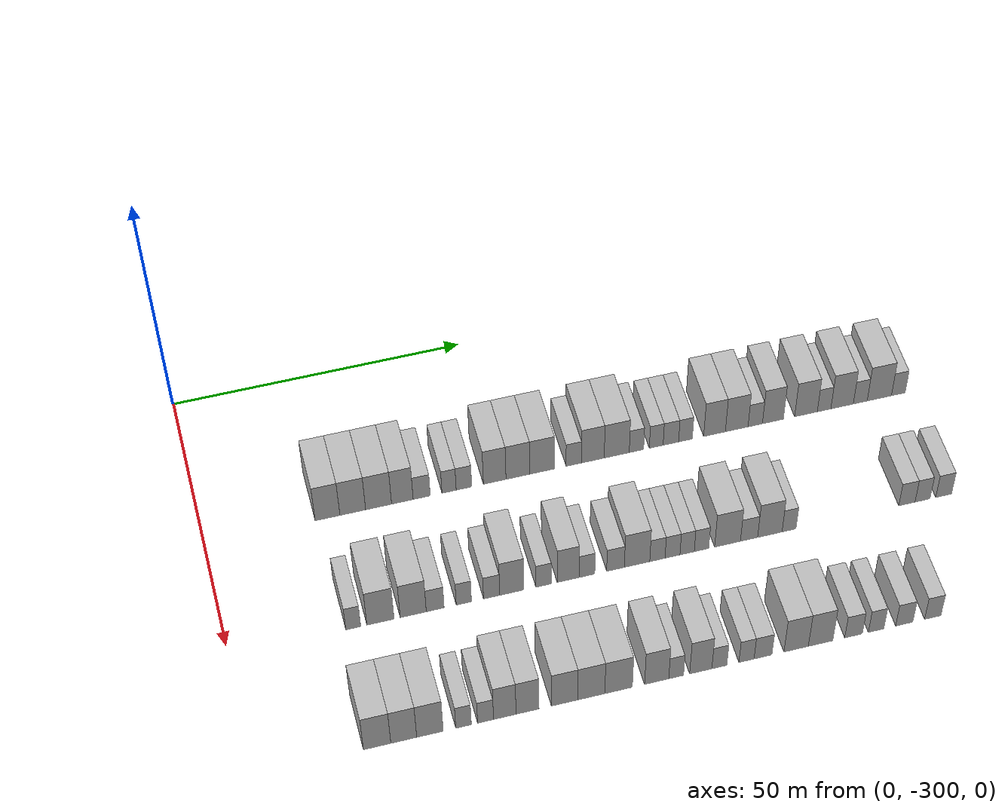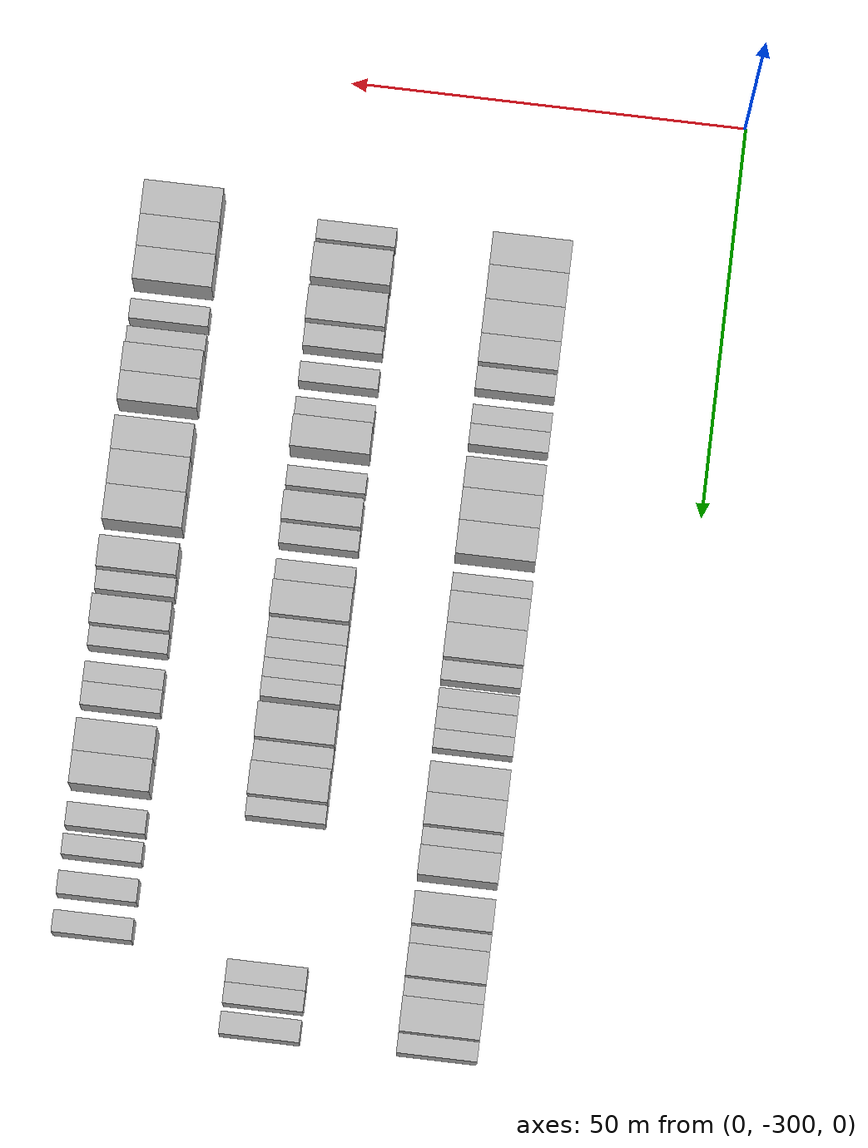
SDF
<sdf version="1.6">
 <world name="default">
  <model name="building_22">
   <static>1</static>
   <pose>25.0000 -279.4295 0 0.000000 0.000000 0.000000</pose>
   <link name="link">
    <pose>0 0 4.50 0 0 0</pose>
    <collision name="collision"><geometry><box><size>10.0000 4.1637 9.0000</size></box></geometry></collision>
    <visual name="visual">
     <cast_shadows>0</cast_shadows>
     <geometry><box><size>10.0000 4.1637 9.0000</size></box></geometry>
     <material>
      <script>
       <uri>model://HANNAS_wall/materials/scripts</uri>
       <uri>model://HANNAS_wall/materials/textures</uri>
       <name>vrc/HANNAS_wall</name>
      </script>
     </material>
    </visual>
   </link>
  </model>
  <model name="building_23">
   <static>1</static>
   <pose>25.0000 -275.1797 0 0.000000 0.000000 0.000000</pose>
   <link name="link">
    <pose>0 0 4.50 0 0 0</pose>
    <collision name="collision"><geometry><box><size>10.0000 4.3360 9.0000</size></box></geometry></collision>
    <visual name="visual">
     <cast_shadows>0</cast_shadows>
     <geometry><box><size>10.0000 4.3360 9.0000</size></box></geometry>
     <material>
      <script>
       <uri>model://HANNAS_wall/materials/scripts</uri>
       <uri>model://HANNAS_wall/materials/textures</uri>
       <name>vrc/HANNAS_wall</name>
      </script>
     </material>
    </visual>
   </link>
  </model>
  <model name="building_24">
   <static>1</static>
   <pose>25.0000 -270.8225 0 0.000000 0.000000 0.000000</pose>
   <link name="link">
    <pose>0 0 4.50 0 0 0</pose>
    <collision name="collision"><geometry><box><size>10.0000 4.3785 9.0000</size></box></geometry></collision>
    <visual name="visual">
     <cast_shadows>0</cast_shadows>
     <geometry><box><size>10.0000 4.3785 9.0000</size></box></geometry>
     <material>
      <script>
       <uri>model://HANNAS_wall/materials/scripts</uri>
       <uri>model://HANNAS_wall/materials/textures</uri>
       <name>vrc/HANNAS_wall</name>
      </script>
     </material>
    </visual>
   </link>
  </model>
  <model name="building_25">
   <static>1</static>
   <pose>25.0000 -266.8065 0 0.000000 0.000000 0.000000</pose>
   <link name="link">
    <pose>0 0 4.50 0 0 0</pose>
    <collision name="collision"><geometry><box><size>10.0000 3.6535 9.0000</size></box></geometry></collision>
    <visual name="visual">
     <cast_shadows>0</cast_shadows>
     <geometry><box><size>10.0000 3.6535 9.0000</size></box></geometry>
     <material>
      <script>
       <uri>model://HANNAS_wall/materials/scripts</uri>
       <uri>model://HANNAS_wall/materials/textures</uri>
       <name>vrc/HANNAS_wall</name>
      </script>
     </material>
    </visual>
   </link>
  </model>
  <model name="building_26">
   <static>1</static>
   <pose>25.0000 -263.5248 0 0.000000 0.000000 0.000000</pose>
   <link name="link">
    <pose>0 0 3.00 0 0 0</pose>
    <collision name="collision"><geometry><box><size>10.0000 2.9098 6.0000</size></box></geometry></collision>
    <visual name="visual">
     <cast_shadows>0</cast_shadows>
     <geometry><box><size>10.0000 2.9098 6.0000</size></box></geometry>
     <material>
      <script>
       <uri>model://HANNAS_wall/materials/scripts</uri>
       <uri>model://HANNAS_wall/materials/textures</uri>
       <name>vrc/HANNAS_wall</name>
      </script>
     </material>
    </visual>
   </link>
  </model>
  <model name="building_27">
   <static>1</static>
   <pose>25.0000 -258.8605 0 0.000000 0.000000 0.000000</pose>
   <link name="link">
    <pose>0 0 3.00 0 0 0</pose>
    <collision name="collision"><geometry><box><size>10.0000 2.4188 6.0000</size></box></geometry></collision>
    <visual name="visual">
     <cast_shadows>0</cast_shadows>
     <geometry><box><size>10.0000 2.4188 6.0000</size></box></geometry>
     <material>
      <script>
       <uri>model://HANNAS_wall/materials/scripts</uri>
       <uri>model://HANNAS_wall/materials/textures</uri>
       <name>vrc/HANNAS_wall</name>
      </script>
     </material>
    </visual>
   </link>
  </model>
  <model name="building_28">
   <static>1</static>
   <pose>25.0000 -256.3234 0 0.000000 0.000000 0.000000</pose>
   <link name="link">
    <pose>0 0 3.00 0 0 0</pose>
    <collision name="collision"><geometry><box><size>10.0000 2.6554 6.0000</size></box></geometry></collision>
    <visual name="visual">
     <cast_shadows>0</cast_shadows>
     <geometry><box><size>10.0000 2.6554 6.0000</size></box></geometry>
     <material>
      <script>
       <uri>model://HANNAS_wall/materials/scripts</uri>
       <uri>model://HANNAS_wall/materials/textures</uri>
       <name>vrc/HANNAS_wall</name>
      </script>
     </material>
    </visual>
   </link>
  </model>
  <model name="building_29">
   <static>1</static>
   <pose>25.0000 -251.0573 0 0.000000 0.000000 0.000000</pose>
   <link name="link">
    <pose>0 0 4.50 0 0 0</pose>
    <collision name="collision"><geometry><box><size>10.0000 3.8767 9.0000</size></box></geometry></collision>
    <visual name="visual">
     <cast_shadows>0</cast_shadows>
     <geometry><box><size>10.0000 3.8767 9.0000</size></box></geometry>
     <material>
      <script>
       <uri>model://HANNAS_wall/materials/scripts</uri>
       <uri>model://HANNAS_wall/materials/textures</uri>
       <name>vrc/HANNAS_wall</name>
      </script>
     </material>
    </visual>
   </link>
  </model>
  <model name="building_30">
   <static>1</static>
   <pose>25.0000 -247.0686 0 0.000000 0.000000 0.000000</pose>
   <link name="link">
    <pose>0 0 4.50 0 0 0</pose>
    <collision name="collision"><geometry><box><size>10.0000 4.1009 9.0000</size></box></geometry></collision>
    <visual name="visual">
     <cast_shadows>0</cast_shadows>
     <geometry><box><size>10.0000 4.1009 9.0000</size></box></geometry>
     <material>
      <script>
       <uri>model://HANNAS_wall/materials/scripts</uri>
       <uri>model://HANNAS_wall/materials/textures</uri>
       <name>vrc/HANNAS_wall</name>
      </script>
     </material>
    </visual>
   </link>
  </model>
  <model name="building_31">
   <static>1</static>
   <pose>25.0000 -242.8872 0 0.000000 0.000000 0.000000</pose>
   <link name="link">
    <pose>0 0 4.50 0 0 0</pose>
    <collision name="collision"><geometry><box><size>10.0000 4.2619 9.0000</size></box></geometry></collision>
    <visual name="visual">
     <cast_shadows>0</cast_shadows>
     <geometry><box><size>10.0000 4.2619 9.0000</size></box></geometry>
     <material>
      <script>
       <uri>model://HANNAS_wall/materials/scripts</uri>
       <uri>model://HANNAS_wall/materials/textures</uri>
       <name>vrc/HANNAS_wall</name>
      </script>
     </material>
    </visual>
   </link>
  </model>
  <model name="building_32">
   <static>1</static>
   <pose>25.0000 -237.4267 0 0.000000 0.000000 0.000000</pose>
   <link name="link">
    <pose>0 0 3.00 0 0 0</pose>
    <collision name="collision"><geometry><box><size>10.0000 2.6591 6.0000</size></box></geometry></collision>
    <visual name="visual">
     <cast_shadows>0</cast_shadows>
     <geometry><box><size>10.0000 2.6591 6.0000</size></box></geometry>
     <material>
      <script>
       <uri>model://HANNAS_wall/materials/scripts</uri>
       <uri>model://HANNAS_wall/materials/textures</uri>
       <name>vrc/HANNAS_wall</name>
      </script>
     </material>
    </visual>
   </link>
  </model>
  <model name="building_33">
   <static>1</static>
   <pose>25.0000 -234.1160 0 0.000000 0.000000 0.000000</pose>
   <link name="link">
    <pose>0 0 4.50 0 0 0</pose>
    <collision name="collision"><geometry><box><size>10.0000 3.9623 9.0000</size></box></geometry></collision>
    <visual name="visual">
     <cast_shadows>0</cast_shadows>
     <geometry><box><size>10.0000 3.9623 9.0000</size></box></geometry>
     <material>
      <script>
       <uri>model://HANNAS_wall/materials/scripts</uri>
       <uri>model://HANNAS_wall/materials/textures</uri>
       <name>vrc/HANNAS_wall</name>
      </script>
     </material>
    </visual>
   </link>
  </model>
  <model name="building_34">
   <static>1</static>
   <pose>25.0000 -229.9554 0 0.000000 0.000000 0.000000</pose>
   <link name="link">
    <pose>0 0 4.50 0 0 0</pose>
    <collision name="collision"><geometry><box><size>10.0000 4.3589 9.0000</size></box></geometry></collision>
    <visual name="visual">
     <cast_shadows>0</cast_shadows>
     <geometry><box><size>10.0000 4.3589 9.0000</size></box></geometry>
     <material>
      <script>
       <uri>model://HANNAS_wall/materials/scripts</uri>
       <uri>model://HANNAS_wall/materials/textures</uri>
       <name>vrc/HANNAS_wall</name>
      </script>
     </material>
    </visual>
   </link>
  </model>
  <model name="building_35">
   <static>1</static>
   <pose>25.0000 -226.5185 0 0.000000 0.000000 0.000000</pose>
   <link name="link">
    <pose>0 0 3.00 0 0 0</pose>
    <collision name="collision"><geometry><box><size>10.0000 2.5149 6.0000</size></box></geometry></collision>
    <visual name="visual">
     <cast_shadows>0</cast_shadows>
     <geometry><box><size>10.0000 2.5149 6.0000</size></box></geometry>
     <material>
      <script>
       <uri>model://HANNAS_wall/materials/scripts</uri>
       <uri>model://HANNAS_wall/materials/textures</uri>
       <name>vrc/HANNAS_wall</name>
      </script>
     </material>
    </visual>
   </link>
  </model>
  <model name="building_36">
   <static>1</static>
   <pose>25.0000 -223.0528 0 0.000000 0.000000 0.000000</pose>
   <link name="link">
    <pose>0 0 3.00 0 0 0</pose>
    <collision name="collision"><geometry><box><size>10.0000 2.4166 6.0000</size></box></geometry></collision>
    <visual name="visual">
     <cast_shadows>0</cast_shadows>
     <geometry><box><size>10.0000 2.4166 6.0000</size></box></geometry>
     <material>
      <script>
       <uri>model://HANNAS_wall/materials/scripts</uri>
       <uri>model://HANNAS_wall/materials/textures</uri>
       <name>vrc/HANNAS_wall</name>
      </script>
     </material>
    </visual>
   </link>
  </model>
  <model name="building_37">
   <static>1</static>
   <pose>25.0000 -220.4855 0 0.000000 0.000000 0.000000</pose>
   <link name="link">
    <pose>0 0 3.00 0 0 0</pose>
    <collision name="collision"><geometry><box><size>10.0000 2.7179 6.0000</size></box></geometry></collision>
    <visual name="visual">
     <cast_shadows>0</cast_shadows>
     <geometry><box><size>10.0000 2.7179 6.0000</size></box></geometry>
     <material>
      <script>
       <uri>model://HANNAS_wall/materials/scripts</uri>
       <uri>model://HANNAS_wall/materials/textures</uri>
       <name>vrc/HANNAS_wall</name>
      </script>
     </material>
    </visual>
   </link>
  </model>
  <model name="building_38">
   <static>1</static>
   <pose>25.0000 -217.9222 0 0.000000 0.000000 0.000000</pose>
   <link name="link">
    <pose>0 0 3.00 0 0 0</pose>
    <collision name="collision"><geometry><box><size>10.0000 2.4088 6.0000</size></box></geometry></collision>
    <visual name="visual">
     <cast_shadows>0</cast_shadows>
     <geometry><box><size>10.0000 2.4088 6.0000</size></box></geometry>
     <material>
      <script>
       <uri>model://HANNAS_wall/materials/scripts</uri>
       <uri>model://HANNAS_wall/materials/textures</uri>
       <name>vrc/HANNAS_wall</name>
      </script>
     </material>
    </visual>
   </link>
  </model>
  <model name="building_39">
   <static>1</static>
   <pose>25.0000 -212.7995 0 0.000000 0.000000 0.000000</pose>
   <link name="link">
    <pose>0 0 4.50 0 0 0</pose>
    <collision name="collision"><geometry><box><size>10.0000 3.8366 9.0000</size></box></geometry></collision>
    <visual name="visual">
     <cast_shadows>0</cast_shadows>
     <geometry><box><size>10.0000 3.8366 9.0000</size></box></geometry>
     <material>
      <script>
       <uri>model://HANNAS_wall/materials/scripts</uri>
       <uri>model://HANNAS_wall/materials/textures</uri>
       <name>vrc/HANNAS_wall</name>
      </script>
     </material>
    </visual>
   </link>
  </model>
  <model name="building_40">
   <static>1</static>
   <pose>25.0000 -208.8753 0 0.000000 0.000000 0.000000</pose>
   <link name="link">
    <pose>0 0 4.50 0 0 0</pose>
    <collision name="collision"><geometry><box><size>10.0000 4.0117 9.0000</size></box></geometry></collision>
    <visual name="visual">
     <cast_shadows>0</cast_shadows>
     <geometry><box><size>10.0000 4.0117 9.0000</size></box></geometry>
     <material>
      <script>
       <uri>model://HANNAS_wall/materials/scripts</uri>
       <uri>model://HANNAS_wall/materials/textures</uri>
       <name>vrc/HANNAS_wall</name>
      </script>
     </material>
    </visual>
   </link>
  </model>
  <model name="building_41">
   <static>1</static>
   <pose>25.0000 -205.5913 0 0.000000 0.000000 0.000000</pose>
   <link name="link">
    <pose>0 0 3.00 0 0 0</pose>
    <collision name="collision"><geometry><box><size>10.0000 2.5564 6.0000</size></box></geometry></collision>
    <visual name="visual">
     <cast_shadows>0</cast_shadows>
     <geometry><box><size>10.0000 2.5564 6.0000</size></box></geometry>
     <material>
      <script>
       <uri>model://HANNAS_wall/materials/scripts</uri>
       <uri>model://HANNAS_wall/materials/textures</uri>
       <name>vrc/HANNAS_wall</name>
      </script>
     </material>
    </visual>
   </link>
  </model>
  <model name="building_42">
   <static>1</static>
   <pose>25.0000 -202.4487 0 0.000000 0.000000 0.000000</pose>
   <link name="link">
    <pose>0 0 4.50 0 0 0</pose>
    <collision name="collision"><geometry><box><size>10.0000 3.7288 9.0000</size></box></geometry></collision>
    <visual name="visual">
     <cast_shadows>0</cast_shadows>
     <geometry><box><size>10.0000 3.7288 9.0000</size></box></geometry>
     <material>
      <script>
       <uri>model://HANNAS_wall/materials/scripts</uri>
       <uri>model://HANNAS_wall/materials/textures</uri>
       <name>vrc/HANNAS_wall</name>
      </script>
     </material>
    </visual>
   </link>
  </model>
  <model name="building_43">
   <static>1</static>
   <pose>25.0000 -196.5522 0 0.000000 0.000000 0.000000</pose>
   <link name="link">
    <pose>0 0 4.50 0 0 0</pose>
    <collision name="collision"><geometry><box><size>10.0000 4.0642 9.0000</size></box></geometry></collision>
    <visual name="visual">
     <cast_shadows>0</cast_shadows>
     <geometry><box><size>10.0000 4.0642 9.0000</size></box></geometry>
     <material>
      <script>
       <uri>model://HANNAS_wall/materials/scripts</uri>
       <uri>model://HANNAS_wall/materials/textures</uri>
       <name>vrc/HANNAS_wall</name>
      </script>
     </material>
    </visual>
   </link>
  </model>
  <model name="building_44">
   <static>1</static>
   <pose>25.0000 -193.3092 0 0.000000 0.000000 0.000000</pose>
   <link name="link">
    <pose>0 0 3.00 0 0 0</pose>
    <collision name="collision"><geometry><box><size>10.0000 2.4218 6.0000</size></box></geometry></collision>
    <visual name="visual">
     <cast_shadows>0</cast_shadows>
     <geometry><box><size>10.0000 2.4218 6.0000</size></box></geometry>
     <material>
      <script>
       <uri>model://HANNAS_wall/materials/scripts</uri>
       <uri>model://HANNAS_wall/materials/textures</uri>
       <name>vrc/HANNAS_wall</name>
      </script>
     </material>
    </visual>
   </link>
  </model>
  <model name="building_45">
   <static>1</static>
   <pose>25.0000 -190.0802 0 0.000000 0.000000 0.000000</pose>
   <link name="link">
    <pose>0 0 4.50 0 0 0</pose>
    <collision name="collision"><geometry><box><size>10.0000 4.0363 9.0000</size></box></geometry></collision>
    <visual name="visual">
     <cast_shadows>0</cast_shadows>
     <geometry><box><size>10.0000 4.0363 9.0000</size></box></geometry>
     <material>
      <script>
       <uri>model://HANNAS_wall/materials/scripts</uri>
       <uri>model://HANNAS_wall/materials/textures</uri>
       <name>vrc/HANNAS_wall</name>
      </script>
     </material>
    </visual>
   </link>
  </model>
  <model name="building_46">
   <static>1</static>
   <pose>25.0000 -186.8166 0 0.000000 0.000000 0.000000</pose>
   <link name="link">
    <pose>0 0 3.00 0 0 0</pose>
    <collision name="collision"><geometry><box><size>10.0000 2.4908 6.0000</size></box></geometry></collision>
    <visual name="visual">
     <cast_shadows>0</cast_shadows>
     <geometry><box><size>10.0000 2.4908 6.0000</size></box></geometry>
     <material>
      <script>
       <uri>model://HANNAS_wall/materials/scripts</uri>
       <uri>model://HANNAS_wall/materials/textures</uri>
       <name>vrc/HANNAS_wall</name>
      </script>
     </material>
    </visual>
   </link>
  </model>
  <model name="building_47">
   <static>1</static>
   <pose>25.0000 -183.3786 0 0.000000 0.000000 0.000000</pose>
   <link name="link">
    <pose>0 0 4.50 0 0 0</pose>
    <collision name="collision"><geometry><box><size>10.0000 4.3853 9.0000</size></box></geometry></collision>
    <visual name="visual">
     <cast_shadows>0</cast_shadows>
     <geometry><box><size>10.0000 4.3853 9.0000</size></box></geometry>
     <material>
      <script>
       <uri>model://HANNAS_wall/materials/scripts</uri>
       <uri>model://HANNAS_wall/materials/textures</uri>
       <name>vrc/HANNAS_wall</name>
      </script>
     </material>
    </visual>
   </link>
  </model>
  <model name="building_48">
   <static>1</static>
   <pose>25.0000 -179.9439 0 0.000000 0.000000 0.000000</pose>
   <link name="link">
    <pose>0 0 3.00 0 0 0</pose>
    <collision name="collision"><geometry><box><size>10.0000 2.4842 6.0000</size></box></geometry></collision>
    <visual name="visual">
     <cast_shadows>0</cast_shadows>
     <geometry><box><size>10.0000 2.4842 6.0000</size></box></geometry>
     <material>
      <script>
       <uri>model://HANNAS_wall/materials/scripts</uri>
       <uri>model://HANNAS_wall/materials/textures</uri>
       <name>vrc/HANNAS_wall</name>
      </script>
     </material>
    </visual>
   </link>
  </model>
  <model name="building_205">
   <static>1</static>
   <pose>47.0000 -279.8410 0 0.000000 0.000000 0.000000</pose>
   <link name="link">
    <pose>0 0 3.00 0 0 0</pose>
    <collision name="collision"><geometry><box><size>10.0000 2.4319 6.0000</size></box></geometry></collision>
    <visual name="visual">
     <cast_shadows>0</cast_shadows>
     <geometry><box><size>10.0000 2.4319 6.0000</size></box></geometry>
     <material>
      <script>
       <uri>model://HANNAS_wall/materials/scripts</uri>
       <uri>model://HANNAS_wall/materials/textures</uri>
       <name>vrc/HANNAS_wall</name>
      </script>
     </material>
    </visual>
   </link>
  </model>
  <model name="building_206">
   <static>1</static>
   <pose>47.0000 -275.4010 0 0.000000 0.000000 0.000000</pose>
   <link name="link">
    <pose>0 0 4.50 0 0 0</pose>
    <collision name="collision"><geometry><box><size>10.0000 4.4481 9.0000</size></box></geometry></collision>
    <visual name="visual">
     <cast_shadows>0</cast_shadows>
     <geometry><box><size>10.0000 4.4481 9.0000</size></box></geometry>
     <material>
      <script>
       <uri>model://HANNAS_wall/materials/scripts</uri>
       <uri>model://HANNAS_wall/materials/textures</uri>
       <name>vrc/HANNAS_wall</name>
      </script>
     </material>
    </visual>
   </link>
  </model>
  <model name="building_207">
   <static>1</static>
   <pose>47.0000 -270.0355 0 0.000000 0.000000 0.000000</pose>
   <link name="link">
    <pose>0 0 4.50 0 0 0</pose>
    <collision name="collision"><geometry><box><size>10.0000 4.2831 9.0000</size></box></geometry></collision>
    <visual name="visual">
     <cast_shadows>0</cast_shadows>
     <geometry><box><size>10.0000 4.2831 9.0000</size></box></geometry>
     <material>
      <script>
       <uri>model://HANNAS_wall/materials/scripts</uri>
       <uri>model://HANNAS_wall/materials/textures</uri>
       <name>vrc/HANNAS_wall</name>
      </script>
     </material>
    </visual>
   </link>
  </model>
  <model name="building_208">
   <static>1</static>
   <pose>47.0000 -266.4271 0 0.000000 0.000000 0.000000</pose>
   <link name="link">
    <pose>0 0 3.00 0 0 0</pose>
    <collision name="collision"><geometry><box><size>10.0000 2.9337 6.0000</size></box></geometry></collision>
    <visual name="visual">
     <cast_shadows>0</cast_shadows>
     <geometry><box><size>10.0000 2.9337 6.0000</size></box></geometry>
     <material>
      <script>
       <uri>model://HANNAS_wall/materials/scripts</uri>
       <uri>model://HANNAS_wall/materials/textures</uri>
       <name>vrc/HANNAS_wall</name>
      </script>
     </material>
    </visual>
   </link>
  </model>
  <model name="building_209">
   <static>1</static>
   <pose>47.0000 -261.7049 0 0.000000 0.000000 0.000000</pose>
   <link name="link">
    <pose>0 0 3.00 0 0 0</pose>
    <collision name="collision"><geometry><box><size>10.0000 2.5108 6.0000</size></box></geometry></collision>
    <visual name="visual">
     <cast_shadows>0</cast_shadows>
     <geometry><box><size>10.0000 2.5108 6.0000</size></box></geometry>
     <material>
      <script>
       <uri>model://HANNAS_wall/materials/scripts</uri>
       <uri>model://HANNAS_wall/materials/textures</uri>
       <name>vrc/HANNAS_wall</name>
      </script>
     </material>
    </visual>
   </link>
  </model>
  <model name="building_210">
   <static>1</static>
   <pose>47.0000 -257.1016 0 0.000000 0.000000 0.000000</pose>
   <link name="link">
    <pose>0 0 3.00 0 0 0</pose>
    <collision name="collision"><geometry><box><size>10.0000 2.6959 6.0000</size></box></geometry></collision>
    <visual name="visual">
     <cast_shadows>0</cast_shadows>
     <geometry><box><size>10.0000 2.6959 6.0000</size></box></geometry>
     <material>
      <script>
       <uri>model://HANNAS_wall/materials/scripts</uri>
       <uri>model://HANNAS_wall/materials/textures</uri>
       <name>vrc/HANNAS_wall</name>
      </script>
     </material>
    </visual>
   </link>
  </model>
  <model name="building_211">
   <static>1</static>
   <pose>47.0000 -253.7463 0 0.000000 0.000000 0.000000</pose>
   <link name="link">
    <pose>0 0 4.50 0 0 0</pose>
    <collision name="collision"><geometry><box><size>10.0000 4.0147 9.0000</size></box></geometry></collision>
    <visual name="visual">
     <cast_shadows>0</cast_shadows>
     <geometry><box><size>10.0000 4.0147 9.0000</size></box></geometry>
     <material>
      <script>
       <uri>model://HANNAS_wall/materials/scripts</uri>
       <uri>model://HANNAS_wall/materials/textures</uri>
       <name>vrc/HANNAS_wall</name>
      </script>
     </material>
    </visual>
   </link>
  </model>
  <model name="building_212">
   <static>1</static>
   <pose>47.0000 -248.4638 0 0.000000 0.000000 0.000000</pose>
   <link name="link">
    <pose>0 0 3.00 0 0 0</pose>
    <collision name="collision"><geometry><box><size>10.0000 2.5503 6.0000</size></box></geometry></collision>
    <visual name="visual">
     <cast_shadows>0</cast_shadows>
     <geometry><box><size>10.0000 2.5503 6.0000</size></box></geometry>
     <material>
      <script>
       <uri>model://HANNAS_wall/materials/scripts</uri>
       <uri>model://HANNAS_wall/materials/textures</uri>
       <name>vrc/HANNAS_wall</name>
      </script>
     </material>
    </visual>
   </link>
  </model>
  <model name="building_213">
   <static>1</static>
   <pose>47.0000 -244.3575 0 0.000000 0.000000 0.000000</pose>
   <link name="link">
    <pose>0 0 4.50 0 0 0</pose>
    <collision name="collision"><geometry><box><size>10.0000 3.6623 9.0000</size></box></geometry></collision>
    <visual name="visual">
     <cast_shadows>0</cast_shadows>
     <geometry><box><size>10.0000 3.6623 9.0000</size></box></geometry>
     <material>
      <script>
       <uri>model://HANNAS_wall/materials/scripts</uri>
       <uri>model://HANNAS_wall/materials/textures</uri>
       <name>vrc/HANNAS_wall</name>
      </script>
     </material>
    </visual>
   </link>
  </model>
  <model name="building_214">
   <static>1</static>
   <pose>47.0000 -241.2093 0 0.000000 0.000000 0.000000</pose>
   <link name="link">
    <pose>0 0 3.00 0 0 0</pose>
    <collision name="collision"><geometry><box><size>10.0000 2.6341 6.0000</size></box></geometry></collision>
    <visual name="visual">
     <cast_shadows>0</cast_shadows>
     <geometry><box><size>10.0000 2.6341 6.0000</size></box></geometry>
     <material>
      <script>
       <uri>model://HANNAS_wall/materials/scripts</uri>
       <uri>model://HANNAS_wall/materials/textures</uri>
       <name>vrc/HANNAS_wall</name>
      </script>
     </material>
    </visual>
   </link>
  </model>
  <model name="building_215">
   <static>1</static>
   <pose>47.0000 -236.4048 0 0.000000 0.000000 0.000000</pose>
   <link name="link">
    <pose>0 0 3.00 0 0 0</pose>
    <collision name="collision"><geometry><box><size>10.0000 2.9750 6.0000</size></box></geometry></collision>
    <visual name="visual">
     <cast_shadows>0</cast_shadows>
     <geometry><box><size>10.0000 2.9750 6.0000</size></box></geometry>
     <material>
      <script>
       <uri>model://HANNAS_wall/materials/scripts</uri>
       <uri>model://HANNAS_wall/materials/textures</uri>
       <name>vrc/HANNAS_wall</name>
      </script>
     </material>
    </visual>
   </link>
  </model>
  <model name="building_216">
   <static>1</static>
   <pose>47.0000 -232.7644 0 0.000000 0.000000 0.000000</pose>
   <link name="link">
    <pose>0 0 4.50 0 0 0</pose>
    <collision name="collision"><geometry><box><size>10.0000 4.3058 9.0000</size></box></geometry></collision>
    <visual name="visual">
     <cast_shadows>0</cast_shadows>
     <geometry><box><size>10.0000 4.3058 9.0000</size></box></geometry>
     <material>
      <script>
       <uri>model://HANNAS_wall/materials/scripts</uri>
       <uri>model://HANNAS_wall/materials/textures</uri>
       <name>vrc/HANNAS_wall</name>
      </script>
     </material>
    </visual>
   </link>
  </model>
  <model name="building_217">
   <static>1</static>
   <pose>47.0000 -229.3202 0 0.000000 0.000000 0.000000</pose>
   <link name="link">
    <pose>0 0 3.00 0 0 0</pose>
    <collision name="collision"><geometry><box><size>10.0000 2.5826 6.0000</size></box></geometry></collision>
    <visual name="visual">
     <cast_shadows>0</cast_shadows>
     <geometry><box><size>10.0000 2.5826 6.0000</size></box></geometry>
     <material>
      <script>
       <uri>model://HANNAS_wall/materials/scripts</uri>
       <uri>model://HANNAS_wall/materials/textures</uri>
       <name>vrc/HANNAS_wall</name>
      </script>
     </material>
    </visual>
   </link>
  </model>
  <model name="building_218">
   <static>1</static>
   <pose>47.0000 -226.7614 0 0.000000 0.000000 0.000000</pose>
   <link name="link">
    <pose>0 0 3.00 0 0 0</pose>
    <collision name="collision"><geometry><box><size>10.0000 2.5348 6.0000</size></box></geometry></collision>
    <visual name="visual">
     <cast_shadows>0</cast_shadows>
     <geometry><box><size>10.0000 2.5348 6.0000</size></box></geometry>
     <material>
      <script>
       <uri>model://HANNAS_wall/materials/scripts</uri>
       <uri>model://HANNAS_wall/materials/textures</uri>
       <name>vrc/HANNAS_wall</name>
      </script>
     </material>
    </visual>
   </link>
  </model>
  <model name="building_219">
   <static>1</static>
   <pose>47.0000 -224.2777 0 0.000000 0.000000 0.000000</pose>
   <link name="link">
    <pose>0 0 3.00 0 0 0</pose>
    <collision name="collision"><geometry><box><size>10.0000 2.4327 6.0000</size></box></geometry></collision>
    <visual name="visual">
     <cast_shadows>0</cast_shadows>
     <geometry><box><size>10.0000 2.4327 6.0000</size></box></geometry>
     <material>
      <script>
       <uri>model://HANNAS_wall/materials/scripts</uri>
       <uri>model://HANNAS_wall/materials/textures</uri>
       <name>vrc/HANNAS_wall</name>
      </script>
     </material>
    </visual>
   </link>
  </model>
  <model name="building_220">
   <static>1</static>
   <pose>47.0000 -221.8286 0 0.000000 0.000000 0.000000</pose>
   <link name="link">
    <pose>0 0 3.00 0 0 0</pose>
    <collision name="collision"><geometry><box><size>10.0000 2.4654 6.0000</size></box></geometry></collision>
    <visual name="visual">
     <cast_shadows>0</cast_shadows>
     <geometry><box><size>10.0000 2.4654 6.0000</size></box></geometry>
     <material>
      <script>
       <uri>model://HANNAS_wall/materials/scripts</uri>
       <uri>model://HANNAS_wall/materials/textures</uri>
       <name>vrc/HANNAS_wall</name>
      </script>
     </material>
    </visual>
   </link>
  </model>
  <model name="building_221">
   <static>1</static>
   <pose>47.0000 -217.3854 0 0.000000 0.000000 0.000000</pose>
   <link name="link">
    <pose>0 0 4.50 0 0 0</pose>
    <collision name="collision"><geometry><box><size>10.0000 4.4210 9.0000</size></box></geometry></collision>
    <visual name="visual">
     <cast_shadows>0</cast_shadows>
     <geometry><box><size>10.0000 4.4210 9.0000</size></box></geometry>
     <material>
      <script>
       <uri>model://HANNAS_wall/materials/scripts</uri>
       <uri>model://HANNAS_wall/materials/textures</uri>
       <name>vrc/HANNAS_wall</name>
      </script>
     </material>
    </visual>
   </link>
  </model>
  <model name="building_222">
   <static>1</static>
   <pose>47.0000 -213.7025 0 0.000000 0.000000 0.000000</pose>
   <link name="link">
    <pose>0 0 3.00 0 0 0</pose>
    <collision name="collision"><geometry><box><size>10.0000 2.9449 6.0000</size></box></geometry></collision>
    <visual name="visual">
     <cast_shadows>0</cast_shadows>
     <geometry><box><size>10.0000 2.9449 6.0000</size></box></geometry>
     <material>
      <script>
       <uri>model://HANNAS_wall/materials/scripts</uri>
       <uri>model://HANNAS_wall/materials/textures</uri>
       <name>vrc/HANNAS_wall</name>
      </script>
     </material>
    </visual>
   </link>
  </model>
  <model name="building_223">
   <static>1</static>
   <pose>47.0000 -210.1298 0 0.000000 0.000000 0.000000</pose>
   <link name="link">
    <pose>0 0 4.50 0 0 0</pose>
    <collision name="collision"><geometry><box><size>10.0000 4.2006 9.0000</size></box></geometry></collision>
    <visual name="visual">
     <cast_shadows>0</cast_shadows>
     <geometry><box><size>10.0000 4.2006 9.0000</size></box></geometry>
     <material>
      <script>
       <uri>model://HANNAS_wall/materials/scripts</uri>
       <uri>model://HANNAS_wall/materials/textures</uri>
       <name>vrc/HANNAS_wall</name>
      </script>
     </material>
    </visual>
   </link>
  </model>
  <model name="building_224">
   <static>1</static>
   <pose>47.0000 -206.8283 0 0.000000 0.000000 0.000000</pose>
   <link name="link">
    <pose>0 0 3.00 0 0 0</pose>
    <collision name="collision"><geometry><box><size>10.0000 2.4024 6.0000</size></box></geometry></collision>
    <visual name="visual">
     <cast_shadows>0</cast_shadows>
     <geometry><box><size>10.0000 2.4024 6.0000</size></box></geometry>
     <material>
      <script>
       <uri>model://HANNAS_wall/materials/scripts</uri>
       <uri>model://HANNAS_wall/materials/textures</uri>
       <name>vrc/HANNAS_wall</name>
      </script>
     </material>
    </visual>
   </link>
  </model>
  <model name="building_225">
   <static>1</static>
   <pose>47.0000 -186.3368 0 0.000000 0.000000 0.000000</pose>
   <link name="link">
    <pose>0 0 3.00 0 0 0</pose>
    <collision name="collision"><geometry><box><size>10.0000 2.8602 6.0000</size></box></geometry></collision>
    <visual name="visual">
     <cast_shadows>0</cast_shadows>
     <geometry><box><size>10.0000 2.8602 6.0000</size></box></geometry>
     <material>
      <script>
       <uri>model://HANNAS_wall/materials/scripts</uri>
       <uri>model://HANNAS_wall/materials/textures</uri>
       <name>vrc/HANNAS_wall</name>
      </script>
     </material>
    </visual>
   </link>
  </model>
  <model name="building_226">
   <static>1</static>
   <pose>47.0000 -183.5931 0 0.000000 0.000000 0.000000</pose>
   <link name="link">
    <pose>0 0 3.00 0 0 0</pose>
    <collision name="collision"><geometry><box><size>10.0000 2.6272 6.0000</size></box></geometry></collision>
    <visual name="visual">
     <cast_shadows>0</cast_shadows>
     <geometry><box><size>10.0000 2.6272 6.0000</size></box></geometry>
     <material>
      <script>
       <uri>model://HANNAS_wall/materials/scripts</uri>
       <uri>model://HANNAS_wall/materials/textures</uri>
       <name>vrc/HANNAS_wall</name>
      </script>
     </material>
    </visual>
   </link>
  </model>
  <model name="building_227">
   <static>1</static>
   <pose>47.0000 -179.8867 0 0.000000 0.000000 0.000000</pose>
   <link name="link">
    <pose>0 0 3.00 0 0 0</pose>
    <collision name="collision"><geometry><box><size>10.0000 2.7856 6.0000</size></box></geometry></collision>
    <visual name="visual">
     <cast_shadows>0</cast_shadows>
     <geometry><box><size>10.0000 2.7856 6.0000</size></box></geometry>
     <material>
      <script>
       <uri>model://HANNAS_wall/materials/scripts</uri>
       <uri>model://HANNAS_wall/materials/textures</uri>
       <name>vrc/HANNAS_wall</name>
      </script>
     </material>
    </visual>
   </link>
  </model>
  <model name="building_399">
   <static>1</static>
   <pose>69.0000 -280.8203 0 0.000000 0.000000 0.000000</pose>
   <link name="link">
    <pose>0 0 4.50 0 0 0</pose>
    <collision name="collision"><geometry><box><size>10.0000 4.3335 9.0000</size></box></geometry></collision>
    <visual name="visual">
     <cast_shadows>0</cast_shadows>
     <geometry><box><size>10.0000 4.3335 9.0000</size></box></geometry>
     <material>
      <script>
       <uri>model://HANNAS_wall/materials/scripts</uri>
       <uri>model://HANNAS_wall/materials/textures</uri>
       <name>vrc/HANNAS_wall</name>
      </script>
     </material>
    </visual>
   </link>
  </model>
  <model name="building_400">
   <static>1</static>
   <pose>69.0000 -276.6087 0 0.000000 0.000000 0.000000</pose>
   <link name="link">
    <pose>0 0 4.50 0 0 0</pose>
    <collision name="collision"><geometry><box><size>10.0000 4.0898 9.0000</size></box></geometry></collision>
    <visual name="visual">
     <cast_shadows>0</cast_shadows>
     <geometry><box><size>10.0000 4.0898 9.0000</size></box></geometry>
     <material>
      <script>
       <uri>model://HANNAS_wall/materials/scripts</uri>
       <uri>model://HANNAS_wall/materials/textures</uri>
       <name>vrc/HANNAS_wall</name>
      </script>
     </material>
    </visual>
   </link>
  </model>
  <model name="building_401">
   <static>1</static>
   <pose>69.0000 -272.4610 0 0.000000 0.000000 0.000000</pose>
   <link name="link">
    <pose>0 0 4.50 0 0 0</pose>
    <collision name="collision"><geometry><box><size>10.0000 4.2055 9.0000</size></box></geometry></collision>
    <visual name="visual">
     <cast_shadows>0</cast_shadows>
     <geometry><box><size>10.0000 4.2055 9.0000</size></box></geometry>
     <material>
      <script>
       <uri>model://HANNAS_wall/materials/scripts</uri>
       <uri>model://HANNAS_wall/materials/textures</uri>
       <name>vrc/HANNAS_wall</name>
      </script>
     </material>
    </visual>
   </link>
  </model>
  <model name="building_402">
   <static>1</static>
   <pose>69.0000 -267.1152 0 0.000000 0.000000 0.000000</pose>
   <link name="link">
    <pose>0 0 3.00 0 0 0</pose>
    <collision name="collision"><geometry><box><size>10.0000 2.4860 6.0000</size></box></geometry></collision>
    <visual name="visual">
     <cast_shadows>0</cast_shadows>
     <geometry><box><size>10.0000 2.4860 6.0000</size></box></geometry>
     <material>
      <script>
       <uri>model://HANNAS_wall/materials/scripts</uri>
       <uri>model://HANNAS_wall/materials/textures</uri>
       <name>vrc/HANNAS_wall</name>
      </script>
     </material>
    </visual>
   </link>
  </model>
  <model name="building_403">
   <static>1</static>
   <pose>69.0000 -263.5957 0 0.000000 0.000000 0.000000</pose>
   <link name="link">
    <pose>0 0 3.00 0 0 0</pose>
    <collision name="collision"><geometry><box><size>10.0000 2.5530 6.0000</size></box></geometry></collision>
    <visual name="visual">
     <cast_shadows>0</cast_shadows>
     <geometry><box><size>10.0000 2.5530 6.0000</size></box></geometry>
     <material>
      <script>
       <uri>model://HANNAS_wall/materials/scripts</uri>
       <uri>model://HANNAS_wall/materials/textures</uri>
       <name>vrc/HANNAS_wall</name>
      </script>
     </material>
    </visual>
   </link>
  </model>
  <model name="building_404">
   <static>1</static>
   <pose>69.0000 -260.5155 0 0.000000 0.000000 0.000000</pose>
   <link name="link">
    <pose>0 0 4.50 0 0 0</pose>
    <collision name="collision"><geometry><box><size>10.0000 3.6074 9.0000</size></box></geometry></collision>
    <visual name="visual">
     <cast_shadows>0</cast_shadows>
     <geometry><box><size>10.0000 3.6074 9.0000</size></box></geometry>
     <material>
      <script>
       <uri>model://HANNAS_wall/materials/scripts</uri>
       <uri>model://HANNAS_wall/materials/textures</uri>
       <name>vrc/HANNAS_wall</name>
      </script>
     </material>
    </visual>
   </link>
  </model>
  <model name="building_405">
   <static>1</static>
   <pose>69.0000 -256.8628 0 0.000000 0.000000 0.000000</pose>
   <link name="link">
    <pose>0 0 4.50 0 0 0</pose>
    <collision name="collision"><geometry><box><size>10.0000 3.6979 9.0000</size></box></geometry></collision>
    <visual name="visual">
     <cast_shadows>0</cast_shadows>
     <geometry><box><size>10.0000 3.6979 9.0000</size></box></geometry>
     <material>
      <script>
       <uri>model://HANNAS_wall/materials/scripts</uri>
       <uri>model://HANNAS_wall/materials/textures</uri>
       <name>vrc/HANNAS_wall</name>
      </script>
     </material>
    </visual>
   </link>
  </model>
  <model name="building_406">
   <static>1</static>
   <pose>69.0000 -250.8892 0 0.000000 0.000000 0.000000</pose>
   <link name="link">
    <pose>0 0 4.50 0 0 0</pose>
    <collision name="collision"><geometry><box><size>10.0000 4.2494 9.0000</size></box></geometry></collision>
    <visual name="visual">
     <cast_shadows>0</cast_shadows>
     <geometry><box><size>10.0000 4.2494 9.0000</size></box></geometry>
     <material>
      <script>
       <uri>model://HANNAS_wall/materials/scripts</uri>
       <uri>model://HANNAS_wall/materials/textures</uri>
       <name>vrc/HANNAS_wall</name>
      </script>
     </material>
    </visual>
   </link>
  </model>
  <model name="building_407">
   <static>1</static>
   <pose>69.0000 -246.5653 0 0.000000 0.000000 0.000000</pose>
   <link name="link">
    <pose>0 0 4.50 0 0 0</pose>
    <collision name="collision"><geometry><box><size>10.0000 4.3984 9.0000</size></box></geometry></collision>
    <visual name="visual">
     <cast_shadows>0</cast_shadows>
     <geometry><box><size>10.0000 4.3984 9.0000</size></box></geometry>
     <material>
      <script>
       <uri>model://HANNAS_wall/materials/scripts</uri>
       <uri>model://HANNAS_wall/materials/textures</uri>
       <name>vrc/HANNAS_wall</name>
      </script>
     </material>
    </visual>
   </link>
  </model>
  <model name="building_408">
   <static>1</static>
   <pose>69.0000 -242.1306 0 0.000000 0.000000 0.000000</pose>
   <link name="link">
    <pose>0 0 4.50 0 0 0</pose>
    <collision name="collision"><geometry><box><size>10.0000 4.4710 9.0000</size></box></geometry></collision>
    <visual name="visual">
     <cast_shadows>0</cast_shadows>
     <geometry><box><size>10.0000 4.4710 9.0000</size></box></geometry>
     <material>
      <script>
       <uri>model://HANNAS_wall/materials/scripts</uri>
       <uri>model://HANNAS_wall/materials/textures</uri>
       <name>vrc/HANNAS_wall</name>
      </script>
     </material>
    </visual>
   </link>
  </model>
  <model name="building_409">
   <static>1</static>
   <pose>69.0000 -235.9181 0 0.000000 0.000000 0.000000</pose>
   <link name="link">
    <pose>0 0 4.50 0 0 0</pose>
    <collision name="collision"><geometry><box><size>10.0000 3.9539 9.0000</size></box></geometry></collision>
    <visual name="visual">
     <cast_shadows>0</cast_shadows>
     <geometry><box><size>10.0000 3.9539 9.0000</size></box></geometry>
     <material>
      <script>
       <uri>model://HANNAS_wall/materials/scripts</uri>
       <uri>model://HANNAS_wall/materials/textures</uri>
       <name>vrc/HANNAS_wall</name>
      </script>
     </material>
    </visual>
   </link>
  </model>
  <model name="building_410">
   <static>1</static>
   <pose>69.0000 -232.7264 0 0.000000 0.000000 0.000000</pose>
   <link name="link">
    <pose>0 0 3.00 0 0 0</pose>
    <collision name="collision"><geometry><box><size>10.0000 2.4295 6.0000</size></box></geometry></collision>
    <visual name="visual">
     <cast_shadows>0</cast_shadows>
     <geometry><box><size>10.0000 2.4295 6.0000</size></box></geometry>
     <material>
      <script>
       <uri>model://HANNAS_wall/materials/scripts</uri>
       <uri>model://HANNAS_wall/materials/textures</uri>
       <name>vrc/HANNAS_wall</name>
      </script>
     </material>
    </visual>
   </link>
  </model>
  <model name="building_411">
   <static>1</static>
   <pose>69.0000 -228.6867 0 0.000000 0.000000 0.000000</pose>
   <link name="link">
    <pose>0 0 4.50 0 0 0</pose>
    <collision name="collision"><geometry><box><size>10.0000 3.6500 9.0000</size></box></geometry></collision>
    <visual name="visual">
     <cast_shadows>0</cast_shadows>
     <geometry><box><size>10.0000 3.6500 9.0000</size></box></geometry>
     <material>
      <script>
       <uri>model://HANNAS_wall/materials/scripts</uri>
       <uri>model://HANNAS_wall/materials/textures</uri>
       <name>vrc/HANNAS_wall</name>
      </script>
     </material>
    </visual>
   </link>
  </model>
  <model name="building_412">
   <static>1</static>
   <pose>69.0000 -225.6235 0 0.000000 0.000000 0.000000</pose>
   <link name="link">
    <pose>0 0 3.00 0 0 0</pose>
    <collision name="collision"><geometry><box><size>10.0000 2.4763 6.0000</size></box></geometry></collision>
    <visual name="visual">
     <cast_shadows>0</cast_shadows>
     <geometry><box><size>10.0000 2.4763 6.0000</size></box></geometry>
     <material>
      <script>
       <uri>model://HANNAS_wall/materials/scripts</uri>
       <uri>model://HANNAS_wall/materials/textures</uri>
       <name>vrc/HANNAS_wall</name>
      </script>
     </material>
    </visual>
   </link>
  </model>
  <model name="building_413">
   <static>1</static>
   <pose>69.0000 -221.1305 0 0.000000 0.000000 0.000000</pose>
   <link name="link">
    <pose>0 0 3.00 0 0 0</pose>
    <collision name="collision"><geometry><box><size>10.0000 2.5098 6.0000</size></box></geometry></collision>
    <visual name="visual">
     <cast_shadows>0</cast_shadows>
     <geometry><box><size>10.0000 2.5098 6.0000</size></box></geometry>
     <material>
      <script>
       <uri>model://HANNAS_wall/materials/scripts</uri>
       <uri>model://HANNAS_wall/materials/textures</uri>
       <name>vrc/HANNAS_wall</name>
      </script>
     </material>
    </visual>
   </link>
  </model>
  <model name="building_414">
   <static>1</static>
   <pose>69.0000 -218.3994 0 0.000000 0.000000 0.000000</pose>
   <link name="link">
    <pose>0 0 3.00 0 0 0</pose>
    <collision name="collision"><geometry><box><size>10.0000 2.9524 6.0000</size></box></geometry></collision>
    <visual name="visual">
     <cast_shadows>0</cast_shadows>
     <geometry><box><size>10.0000 2.9524 6.0000</size></box></geometry>
     <material>
      <script>
       <uri>model://HANNAS_wall/materials/scripts</uri>
       <uri>model://HANNAS_wall/materials/textures</uri>
       <name>vrc/HANNAS_wall</name>
      </script>
     </material>
    </visual>
   </link>
  </model>
  <model name="building_415">
   <static>1</static>
   <pose>69.0000 -212.8875 0 0.000000 0.000000 0.000000</pose>
   <link name="link">
    <pose>0 0 4.50 0 0 0</pose>
    <collision name="collision"><geometry><box><size>10.0000 4.0714 9.0000</size></box></geometry></collision>
    <visual name="visual">
     <cast_shadows>0</cast_shadows>
     <geometry><box><size>10.0000 4.0714 9.0000</size></box></geometry>
     <material>
      <script>
       <uri>model://HANNAS_wall/materials/scripts</uri>
       <uri>model://HANNAS_wall/materials/textures</uri>
       <name>vrc/HANNAS_wall</name>
      </script>
     </material>
    </visual>
   </link>
  </model>
  <model name="building_416">
   <static>1</static>
   <pose>69.0000 -208.8079 0 0.000000 0.000000 0.000000</pose>
   <link name="link">
    <pose>0 0 4.50 0 0 0</pose>
    <collision name="collision"><geometry><box><size>10.0000 4.0879 9.0000</size></box></geometry></collision>
    <visual name="visual">
     <cast_shadows>0</cast_shadows>
     <geometry><box><size>10.0000 4.0879 9.0000</size></box></geometry>
     <material>
      <script>
       <uri>model://HANNAS_wall/materials/scripts</uri>
       <uri>model://HANNAS_wall/materials/textures</uri>
       <name>vrc/HANNAS_wall</name>
      </script>
     </material>
    </visual>
   </link>
  </model>
  <model name="building_417">
   <static>1</static>
   <pose>69.0000 -203.2791 0 0.000000 0.000000 0.000000</pose>
   <link name="link">
    <pose>0 0 3.00 0 0 0</pose>
    <collision name="collision"><geometry><box><size>10.0000 2.9696 6.0000</size></box></geometry></collision>
    <visual name="visual">
     <cast_shadows>0</cast_shadows>
     <geometry><box><size>10.0000 2.9696 6.0000</size></box></geometry>
     <material>
      <script>
       <uri>model://HANNAS_wall/materials/scripts</uri>
       <uri>model://HANNAS_wall/materials/textures</uri>
       <name>vrc/HANNAS_wall</name>
      </script>
     </material>
    </visual>
   </link>
  </model>
  <model name="building_418">
   <static>1</static>
   <pose>69.0000 -199.4928 0 0.000000 0.000000 0.000000</pose>
   <link name="link">
    <pose>0 0 3.00 0 0 0</pose>
    <collision name="collision"><geometry><box><size>10.0000 2.6029 6.0000</size></box></geometry></collision>
    <visual name="visual">
     <cast_shadows>0</cast_shadows>
     <geometry><box><size>10.0000 2.6029 6.0000</size></box></geometry>
     <material>
      <script>
       <uri>model://HANNAS_wall/materials/scripts</uri>
       <uri>model://HANNAS_wall/materials/textures</uri>
       <name>vrc/HANNAS_wall</name>
      </script>
     </material>
    </visual>
   </link>
  </model>
  <model name="building_419">
   <static>1</static>
   <pose>69.0000 -194.7421 0 0.000000 0.000000 0.000000</pose>
   <link name="link">
    <pose>0 0 3.00 0 0 0</pose>
    <collision name="collision"><geometry><box><size>10.0000 2.8986 6.0000</size></box></geometry></collision>
    <visual name="visual">
     <cast_shadows>0</cast_shadows>
     <geometry><box><size>10.0000 2.8986 6.0000</size></box></geometry>
     <material>
      <script>
       <uri>model://HANNAS_wall/materials/scripts</uri>
       <uri>model://HANNAS_wall/materials/textures</uri>
       <name>vrc/HANNAS_wall</name>
      </script>
     </material>
    </visual>
   </link>
  </model>
  <model name="building_420">
   <static>1</static>
   <pose>69.0000 -189.9107 0 0.000000 0.000000 0.000000</pose>
   <link name="link">
    <pose>0 0 3.00 0 0 0</pose>
    <collision name="collision"><geometry><box><size>10.0000 2.7643 6.0000</size></box></geometry></collision>
    <visual name="visual">
     <cast_shadows>0</cast_shadows>
     <geometry><box><size>10.0000 2.7643 6.0000</size></box></geometry>
     <material>
      <script>
       <uri>model://HANNAS_wall/materials/scripts</uri>
       <uri>model://HANNAS_wall/materials/textures</uri>
       <name>vrc/HANNAS_wall</name>
      </script>
     </material>
    </visual>
   </link>
  </model>
 </world>
</sdf>
